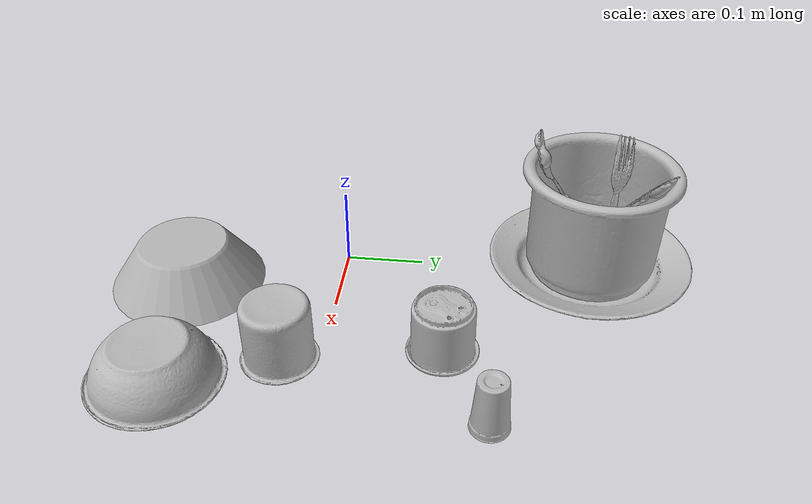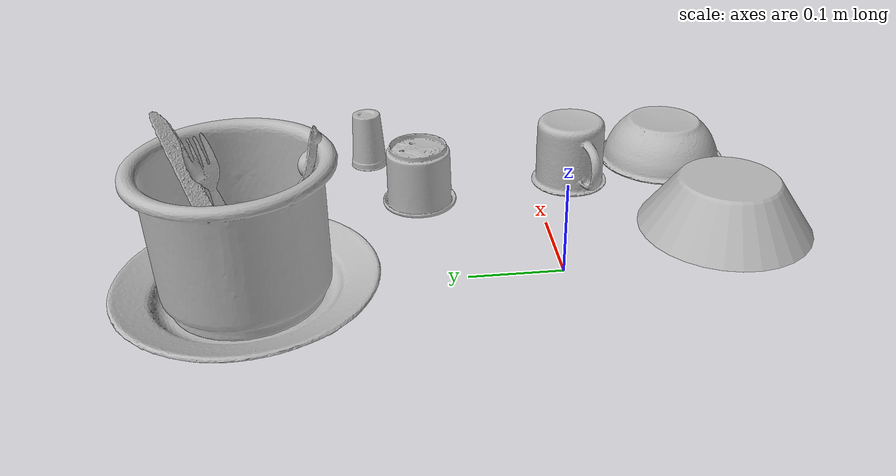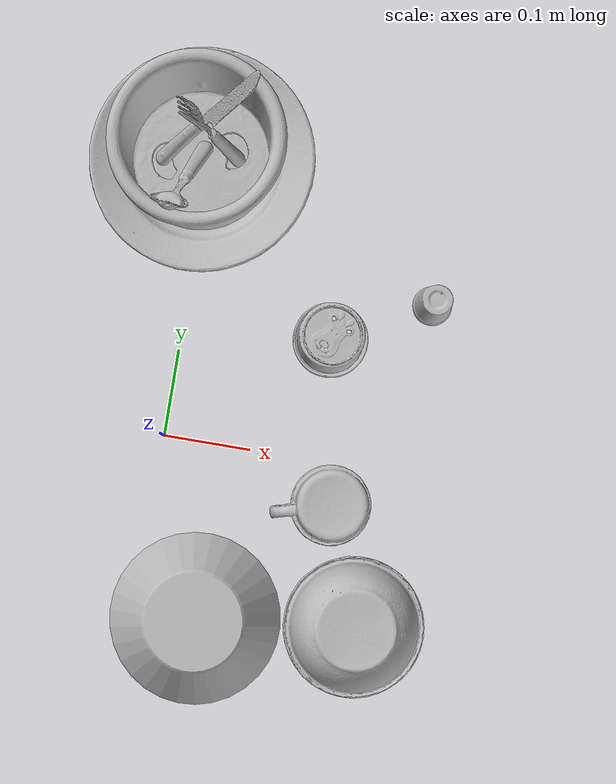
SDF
<?xml version="1.0" ?>
<sdf version="1.4">

  <world name="default">

    <light name="light1" type="point">

      <pose>0 0 1 0 0 0</pose>

      <diffuse>3 3 3 1</diffuse>

      <specular>3 3 3 1</specular>

    </light>

    <light name="light2" type="point">

      <pose>0 0.5 2 0 0 0</pose>

      <diffuse>1 1 1 1</diffuse>

      <specular>1 1 1 1</specular>

    </light>

    <light name="light3" type="point">

      <pose>0 0.5 2 0 0 0</pose>

      <diffuse>3 3 3 1</diffuse>

      <specular>3 3 3 1</specular>

    </light>

    <scene>

      <ambient>0.7 0.7 0.7</ambient>

    </scene>

    <model name="plate1">

      <link name="link_plate1">

        <collision name="default">

          <geometry>

            <mesh>

              <uri>model://plate/collision_meshes/collision.obj</uri>

              <scale>1.0 1.0 1.0</scale>

            </mesh>

          </geometry>

          <surface>

            <friction>

              <ode>

                <mu>0.5</mu>

                <mu2>0.5</mu2>

              </ode>

            </friction>

          </surface>

        </collision>

        <visual name="default">

          <geometry>

            <mesh>

              <uri>model://plate/visual_meshes/visual.dae</uri>

              <scale>1.0 1.0 1.0</scale>

            </mesh>

          </geometry>

        </visual>

        <inertial>

          <mass>0.22833794355392456</mass>

          <pose>-0.000604461005423218 0.00027825840516015887 -0.0010561991948634386 0.0022188074693480237 -0.003225470002654536 0.4526028307495764</pose>

          <inertia>

            <ixx>0.0010681693</ixx>

            <iyy>0.0010579526</iyy>

            <izz>0.0020891798</izz>

            <ixy>0</ixy>

            <ixz>0</ixz>

            <iyz>0</iyz>

          </inertia>

        </inertial>

      </link>

      <pose>-0.010006285272538662 0.3200095295906067 0.013733461499214172 -4.990032259574458e-07 -6.603102152936368e-06 0.0003668860689374173</pose>

    </model>

    <model name="cup1">

      <link name="link_cup1">

        <collision name="default">

          <geometry>

            <mesh>

              <uri>model://i_cups/collision_meshes/collision.obj</uri>

              <scale>2.0 2.0 2.0</scale>

            </mesh>

          </geometry>

          <surface>

            <friction>

              <ode>

                <mu>0.5</mu>

                <mu2>0.5</mu2>

              </ode>

            </friction>

          </surface>

        </collision>

        <visual name="default">

          <geometry>

            <mesh>

              <uri>model://i_cups/visual_meshes/visual.dae</uri>

              <scale>2.0 2.0 2.0</scale>

            </mesh>

          </geometry>

        </visual>

        <inertial>

          <mass>0.4681873917579651</mass>

          <pose>0.00022480281768366694 0.00033594679553061724 -0.001715805265121162 -0.028982833374769763 -0.039873302367341296 -0.3459182567321849</pose>

          <inertia>

            <ixx>0.0025928493</ixx>

            <iyy>0.0026156942</iyy>

            <izz>0.0028979292</izz>

            <ixy>0</ixy>

            <ixz>0</ixz>

            <iyz>0</iyz>

          </inertia>

        </inertial>

      </link>

      <pose>-0.011130680330097675 0.3200748860836029 0.07946638017892838 -0.0025439274879164903 -0.009107103864775838 0.005464150248993465</pose>

    </model>

    <model name="silverware1">

      <link name="link_silverware1">

        <collision name="default">

          <geometry>

            <mesh>

              <uri>model://fork/collision_meshes/collision.obj</uri>

              <scale>1.0 1.0 1.0</scale>

            </mesh>

          </geometry>

          <surface>

            <friction>

              <ode>

                <mu>0.5</mu>

                <mu2>0.5</mu2>

              </ode>

            </friction>

          </surface>

        </collision>

        <visual name="default">

          <geometry>

            <mesh>

              <uri>model://fork/visual_meshes/visual.dae</uri>

              <scale>1.0 1.0 1.0</scale>

            </mesh>

          </geometry>

        </visual>

        <inertial>

          <mass>0.027571624144911766</mass>

          <pose>-0.02957003377377987 0.00046588233090005815 0.00032188609475269914 -0.013550958023284024 -0.010977835737993834 0.014453901364285019</pose>

          <inertia>

            <ixx>9.665413e-07</ixx>

            <iyy>7.198156e-05</iyy>

            <izz>7.24139e-05</izz>

            <ixy>0</ixy>

            <ixz>0</ixz>

            <iyz>0</iyz>

          </inertia>

        </inertial>

      </link>

      <pose>0.002125941216945648 0.3366949260234833 0.09713631868362427 -2.4485278444525886 -1.2353262105845528 2.844009215118281</pose>

    </model>

    <model name="silverware2">

      <link name="link_silverware2">

        <collision name="default">

          <geometry>

            <mesh>

              <uri>model://spoon/collision_meshes/collision.obj</uri>

              <scale>1.0 1.0 1.0</scale>

            </mesh>

          </geometry>

          <surface>

            <friction>

              <ode>

                <mu>0.5</mu>

                <mu2>0.5</mu2>

              </ode>

            </friction>

          </surface>

        </collision>

        <visual name="default">

          <geometry>

            <mesh>

              <uri>model://spoon/visual_meshes/visual.dae</uri>

              <scale>1.0 1.0 1.0</scale>

            </mesh>

          </geometry>

        </visual>

        <inertial>

          <mass>0.026229728013277054</mass>

          <pose>-0.005526318680495024 -0.001603417913429439 -0.0007271656068041921 0.03521671072465583 -0.039065837568760656 0.006150610113583586</pose>

          <inertia>

            <ixx>1.4589405e-06</ixx>

            <iyy>9.980327e-05</iyy>

            <izz>0.00010052276</izz>

            <ixy>0</ixy>

            <ixz>0</ixz>

            <iyz>0</iyz>

          </inertia>

        </inertial>

      </link>

      <pose>-0.018281344324350357 0.2818314731121063 0.10402778536081314 0.09253635114377977 -0.9422570527255592 -1.810522084561758</pose>

    </model>

    <model name="silverware3">

      <link name="link_silverware3">

        <collision name="default">

          <geometry>

            <mesh>

              <uri>model://knife/collision_meshes/collision.obj</uri>

              <scale>1.0 1.0 1.0</scale>

            </mesh>

          </geometry>

          <surface>

            <friction>

              <ode>

                <mu>0.5</mu>

                <mu2>0.5</mu2>

              </ode>

            </friction>

          </surface>

        </collision>

        <visual name="default">

          <geometry>

            <mesh>

              <uri>model://knife/visual_meshes/visual.dae</uri>

              <scale>1.0 1.0 1.0</scale>

            </mesh>

          </geometry>

        </visual>

        <inertial>

          <mass>0.02346421591937542</mass>

          <pose>-0.02378525584936142 0.0015275125624611974 5.062017953605391e-05 0.07305400797241687 0.017248417900584085 -0.007409820985288758</pose>

          <inertia>

            <ixx>6.6600956e-07</ixx>

            <iyy>9.0145724e-05</iyy>

            <izz>9.036023e-05</izz>

            <ixy>0</ixy>

            <ixz>0</ixz>

            <iyz>0</iyz>

          </inertia>

        </inertial>

      </link>

      <pose>-0.0053788647055625916 0.35100722312927246 0.09679851680994034 -0.1250632076873689 -0.9035641278269453 0.6573825898362361</pose>

    </model>

    <model name="cup3">

      <link name="link_cup3">

        <collision name="default">

          <geometry>

            <mesh>

              <uri>model://g_cups/collision_meshes/collision.obj</uri>

              <scale>1.0 1.0 1.0</scale>

            </mesh>

          </geometry>

          <surface>

            <friction>

              <ode>

                <mu>0.5</mu>

                <mu2>0.5</mu2>

              </ode>

            </friction>

          </surface>

        </collision>

        <visual name="default">

          <geometry>

            <mesh>

              <uri>model://g_cups/visual_meshes/visual.dae</uri>

              <scale>1.0 1.0 1.0</scale>

            </mesh>

          </geometry>

        </visual>

        <inertial>

          <mass>0.061065707355737686</mass>

          <pose>-0.0007946277037262917 -4.2064726585522294e-05 -0.002132938476279378 -0.21381528234109023 -0.31410608856426947 0.31118675593786127</pose>

          <inertia>

            <ixx>7.1277376e-05</ixx>

            <iyy>7.10349e-05</iyy>

            <izz>7.383109e-05</izz>

            <ixy>0</ixy>

            <ixz>0</ixz>

            <iyz>0</iyz>

          </inertia>

        </inertial>

      </link>

      <pose>0.17014391720294952 0.1401061862707138 0.03711600601673126 3.1415925916844722 2.035520587084151e-08 -0.4454874772204547</pose>

    </model>

    <model name="cup4">

      <link name="link_cup4">

        <collision name="default">

          <geometry>

            <mesh>

              <uri>model://mug/collision_meshes/collision.obj</uri>

              <scale>1.0 1.0 1.0</scale>

            </mesh>

          </geometry>

          <surface>

            <friction>

              <ode>

                <mu>0.5</mu>

                <mu2>0.5</mu2>

              </ode>

            </friction>

          </surface>

        </collision>

        <visual name="default">

          <geometry>

            <mesh>

              <uri>model://mug/visual_meshes/visual.dae</uri>

              <scale>1.0 1.0 1.0</scale>

            </mesh>

          </geometry>

        </visual>

        <inertial>

          <mass>0.23807048797607422</mass>

          <pose>0.009571674279868603 0.0008143257582560182 -0.010947330854833126 -0.1298314387661624 0.08737745525079747 0.05507303490292968</pose>

          <inertia>

            <ixx>0.00023648023</ixx>

            <iyy>0.0002641344</iyy>

            <izz>0.00030547503</izz>

            <ixy>0</ixy>

            <ixz>0</ixz>

            <iyz>0</iyz>

          </inertia>

        </inertial>

      </link>

      <pose>0.1899237483739853 -0.050070762634277344 0.040958039462566376 -3.141592624288487 1.8254928990519644e-08 0.2941441313035072</pose>

    </model>

    <model name="cup5">

      <link name="link_cup5">

        <collision name="default">

          <geometry>

            <mesh>

              <uri>model://cup_small/collision_meshes/collision.obj</uri>

              <scale>1.0 1.0 1.0</scale>

            </mesh>

          </geometry>

          <surface>

            <friction>

              <ode>

                <mu>0.5</mu>

                <mu2>0.5</mu2>

              </ode>

            </friction>

          </surface>

        </collision>

        <visual name="default">

          <geometry>

            <mesh>

              <uri>model://cup_small/visual_meshes/visual.dae</uri>

              <scale>1.0 1.0 1.0</scale>

            </mesh>

          </geometry>

        </visual>

        <inertial>

          <mass>0.034257128834724426</mass>

          <pose>0.00010482469951966777 -0.00033778377110138535 -0.01074282731860876 -0.011493012610900502 -0.015280351102743797 -0.5058271067899499</pose>

          <inertia>

            <ixx>2.0170073e-05</ixx>

            <iyy>2.0274121e-05</iyy>

            <izz>9.106847e-06</izz>

            <ixy>0</ixy>

            <ixz>0</ixz>

            <iyz>0</iyz>

          </inertia>

        </inertial>

      </link>

      <pose>0.2801573872566223 0.19872304797172546 0.03470025211572647 -3.132452769112431 0.00864886746294737 1.20697629612792</pose>

    </model>

    <model name="bowl1">

      <link name="link_bowl1">

        <collision name="default">

          <geometry>

            <mesh>

              <uri>model://bowl/collision_meshes/collision.obj</uri>

              <scale>1.0 1.0 1.0</scale>

            </mesh>

          </geometry>

          <surface>

            <friction>

              <ode>

                <mu>0.5</mu>

                <mu2>0.5</mu2>

              </ode>

            </friction>

          </surface>

        </collision>

        <visual name="default">

          <geometry>

            <mesh>

              <uri>model://bowl/visual_meshes/visual.dae</uri>

              <scale>1.0 1.0 1.0</scale>

            </mesh>

          </geometry>

        </visual>

        <inertial>

          <mass>0.06465846300125122</mass>

          <pose>0.0002044529392151162 -0.0010302059818059206 -0.0008042643894441426 -0.015764115524798613 0.014546769889283702 0.7140385686011532</pose>

          <inertia>

            <ixx>0.00014852564</ixx>

            <iyy>0.000145207</iyy>

            <izz>0.00024987117</izz>

            <ixy>0</ixy>

            <ixz>0</ixz>

            <iyz>0</iyz>

          </inertia>

        </inertial>

      </link>

      <pose>0.25012585520744324 -0.1799338310956955 0.027247361838817596 -3.1327240500976954 0.0006753976759123244 0.9587180640076431</pose>

    </model>

    <model name="bowl2">

      <link name="link_bowl2">

        <collision name="default">

          <geometry>

            <mesh>

              <uri>model://bowl_a/collision_meshes/collision.obj</uri>

              <scale>1.0 1.0 1.0</scale>

            </mesh>

          </geometry>

          <surface>

            <friction>

              <ode>

                <mu>0.5</mu>

                <mu2>0.5</mu2>

              </ode>

            </friction>

          </surface>

        </collision>

        <visual name="default">

          <geometry>

            <mesh>

              <uri>model://bowl_a/visual_meshes/visual.dae</uri>

              <scale>1.0 1.0 1.0</scale>

            </mesh>

          </geometry>

        </visual>

        <inertial>

          <mass>0.4949932396411896</mass>

          <pose>0.00027867621975019574 4.730939326691441e-05 -0.0013765293406322598 -0.0009805412802391578 -0.001093824733375575 -0.19123603072484788</pose>

          <inertia>

            <ixx>0.0014092687</ixx>

            <iyy>0.0014179207</iyy>

            <izz>0.0025064375</izz>

            <ixy>0</ixy>

            <ixz>0</ixz>

            <iyz>0</iyz>

          </inertia>

        </inertial>

      </link>

      <pose>0.06977104395627975 -0.20000213384628296 0.030102023854851723 3.141592649413692 -1.9058268506412134e-08 0.9007618271204118</pose>

    </model>

  </world>

</sdf>
